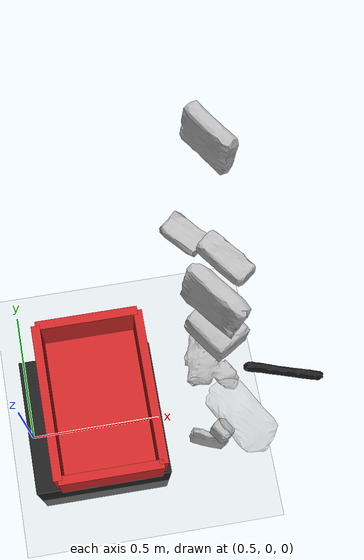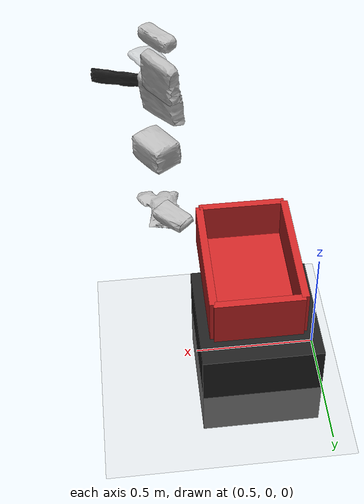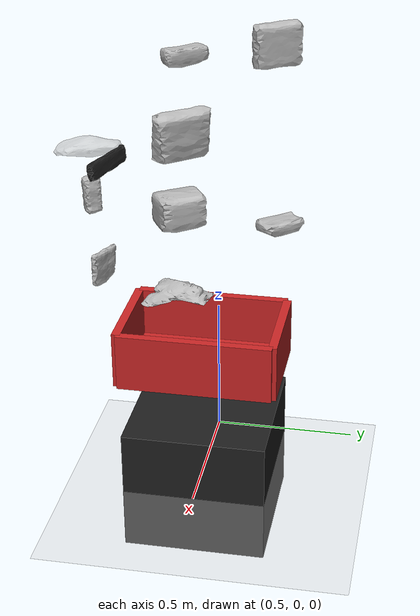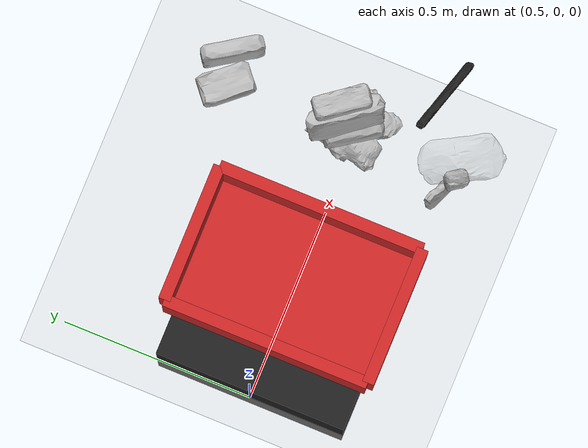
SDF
<sdf version="1.4">
 <world name="default">
  <include><uri>model://ground_plane</uri></include>
  <include><uri>model://sun</uri></include>
  <include><uri>model://apc_order_bin</uri><name>apc_order_bin</name><pose>0.78 0 0.40 0 0 0</pose></include>
  <include>
   <uri>model://apc_order_bin_stage</uri>
   <name>apc_order_bin_stage</name>
   <pose>0.75 0 0 0 0 0</pose>
  </include>
  <include><uri>model://crayola_64_ct</uri><name>crayola_64_ct</name><pose>1.08 0.3 1.6 0 0 0</pose></include>
  <include>
   <uri>model://expo_dry_erase_board_eraser</uri>
   <name>expo_dry_erase_board_eraser</name>
   <pose>1.08 0 1.6 0 0 0</pose>
  </include>
  <include><uri>model://oreo_mega_stuf</uri><name>oreo_mega_stuf</name><pose>1.08 0 1.3 0 0 0</pose></include>
  <include>
   <uri>model://paper_mate_12_count_mirado_black_warrior</uri>
   <name>paper_mate_12_count_mirado_black_warrior</name>
   <pose>1.23 -0.2 1.3 0 0 0</pose>
  </include>
  <include>
   <uri>model://safety_works_safety_glasses</uri>
   <name>safety_works_safety_glasses</name>
   <pose>1.08 -0.28 1.3 0 0 0</pose>
  </include>
  <include>
   <uri>model://mead_index_cards</uri>
   <name>mead_index_cards</name>
   <pose>1.08 0.28 1.1 0 0 0</pose>
  </include>
  <include>
   <uri>model://genuine_joe_plastic_stir_sticks</uri>
   <name>genuine_joe_plastic_stir_sticks</name>
   <pose>1.08 0 1.1 0 0 0</pose>
  </include>
  <include>
   <uri>model://highland_6539_self_stick_notes</uri>
   <name>highland_6539_self_stick_notes</name>
   <pose>1.08 -0.28 1.1 0 0 0</pose>
  </include>
  <include>
   <uri>model://kong_sitting_frog_dog_toy</uri>
   <name>kong_sitting_frog_dog_toy</name>
   <pose>1.08 0 0.85 0 0 0</pose>
  </include>
  <include>
   <uri>model://sharpie_accent_tank_style_highlighters</uri>
   <name>sharpie_accent_tank_style_highlighters</name>
   <pose>1.08 -0.28 0.85 0 0 0</pose>
  </include>
  <physics type="ode">
   <real_time_update_rate>1000.0</real_time_update_rate>
   <gravity>0.0 0.0 -9.81</gravity>
  </physics>
 </world>
</sdf>

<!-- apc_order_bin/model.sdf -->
<!-- |    This file was autogenerated by gzsdf from order_bin.urdf                     | -->
<!-- |    EDITING THIS FILE BY HAND IS NOT RECOMMENDED                                 | -->
<sdf version='1.4'>
  <model name='order_bin'>
    <link name='order_bin_base'>
      <pose>0 0 0 0 -0 0</pose>
      <inertial>
        <pose>0 0 0.08 0 -0 0</pose>
        <mass>0.4</mass>
        <inertia>
          <ixx>0.012376</ixx>
          <ixy>0</ixy>
          <ixz>0</ixz>
          <iyy>0.00604</iyy>
          <iyz>0</iyz>
          <izz>0.016636</izz>
        </inertia>
      </inertial>
      <collision name='order_bin_base_collision'>
        <pose>0 0 0.1 0 -0 0</pose>
        <geometry>
          <box>
            <size>0.03 0.53 0.2</size>
          </box>
        </geometry>
        <surface>
          <contact>
            <ode/>
          </contact>
          <friction>
            <ode/>
          </friction>
        </surface>
      </collision>
      <collision name='order_bin_base_collision_order_bin_x_part0'>
        <pose>-0.175 0 0.1 0 -0 0</pose>
        <geometry>
          <box>
            <size>0.03 0.53 0.2</size>
          </box>
        </geometry>
        <surface>
          <contact>
            <ode/>
          </contact>
          <friction>
            <ode/>
          </friction>
        </surface>
        <surface>
          <contact>
            <ode/>
          </contact>
          <friction>
            <ode/>
          </friction>
        </surface>
      </collision>
      <collision name='order_bin_base_collision_order_bin_x_part1'>
        <pose>0.175 0 0.1 0 -0 0</pose>
        <geometry>
          <box>
            <size>0.03 0.53 0.2</size>
          </box>
        </geometry>
        <surface>
          <contact>
            <ode/>
          </contact>
          <friction>
            <ode/>
          </friction>
        </surface>
        <surface>
          <contact>
            <ode/>
          </contact>
          <friction>
            <ode/>
          </friction>
        </surface>
      </collision>
      <collision name='order_bin_base_collision_order_bin_y_part0'>
        <pose>0 -0.265 0.1 0 -0 0</pose>
        <geometry>
          <box>
            <size>0.35 0.03 0.2</size>
          </box>
        </geometry>
        <surface>
          <contact>
            <ode/>
          </contact>
          <friction>
            <ode/>
          </friction>
        </surface>
        <surface>
          <contact>
            <ode/>
          </contact>
          <friction>
            <ode/>
          </friction>
        </surface>
      </collision>
      <collision name='order_bin_base_collision_order_bin_y_part1'>
        <pose>0 0.265 0.1 0 -0 0</pose>
        <geometry>
          <box>
            <size>0.35 0.03 0.2</size>
          </box>
        </geometry>
        <surface>
          <contact>
            <ode/>
          </contact>
          <friction>
            <ode/>
          </friction>
        </surface>
        <surface>
          <contact>
            <ode/>
          </contact>
          <friction>
            <ode/>
          </friction>
        </surface>
      </collision>
      <visual name='order_bin_base_visual'>
        <pose>0 0 0.015 0 -0 0</pose>
        <geometry>
          <box>
            <size>0.35 0.53 0.03</size>
          </box>
        </geometry>
        <material>
          <script>
            <name>Gazebo/Red</name>
            <uri>__default__</uri>
          </script>
        </material>
      </visual>
      <visual name='order_bin_base_visual_order_bin_x_part0'>
        <pose>-0.175 0 0.1 0 -0 0</pose>
        <geometry>
          <box>
            <size>0.03 0.53 0.2</size>
          </box>
        </geometry>
        <material>
          <script>
            <name>Gazebo/Red</name>
            <uri>__default__</uri>
          </script>
        </material>
      </visual>
      <visual name='order_bin_base_visual_order_bin_x_part1'>
        <pose>0.175 0 0.1 0 -0 0</pose>
        <geometry>
          <box>
            <size>0.03 0.53 0.2</size>
          </box>
        </geometry>
        <material>
          <script>
            <name>Gazebo/Red</name>
            <uri>__default__</uri>
          </script>
        </material>
      </visual>
      <visual name='order_bin_base_visual_order_bin_y_part0'>
        <pose>0 -0.265 0.1 0 -0 0</pose>
        <geometry>
          <box>
            <size>0.35 0.03 0.2</size>
          </box>
        </geometry>
        <material>
          <script>
            <name>Gazebo/Red</name>
            <uri>__default__</uri>
          </script>
        </material>
      </visual>
      <visual name='order_bin_base_visual_order_bin_y_part1'>
        <pose>0 0.265 0.1 0 -0 0</pose>
        <geometry>
          <box>
            <size>0.35 0.03 0.2</size>
          </box>
        </geometry>
        <material>
          <script>
            <name>Gazebo/Red</name>
            <uri>__default__</uri>
          </script>
        </material>
      </visual>
      <velocity_decay>
        <linear>0</linear>
        <angular>0</angular>
      </velocity_decay>
      <velocity_decay>
        <linear>0</linear>
        <angular>0</angular>
      </velocity_decay>
      <velocity_decay>
        <linear>0</linear>
        <angular>0</angular>
      </velocity_decay>
      <velocity_decay>
        <linear>0</linear>
        <angular>0</angular>
      </velocity_decay>
      <gravity>1</gravity>
      <velocity_decay>
        <linear>0</linear>
        <angular>0</angular>
      </velocity_decay>
      <self_collide>0</self_collide>
    </link>
  </model>
</sdf>

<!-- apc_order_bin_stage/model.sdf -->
<sdf version="1.4">
<model name="apc_order_bin_stage">
  <pose>0 0 0.225 0 0 0</pose>
  <link name="link">
    <inertial>
      <mass>15.0</mass>
      <inertia> <!-- interias are tricky to compute -->
        <!-- http://answers.gazebosim.org/question/4372/the-inertia-matrix-explained/ -->
        <ixx>7</ixx>       <!-- for a box: ixx = 0.083 * mass * (y*y + z*z) -->
        <ixy>0.0</ixy>         <!-- for a box: ixy = 0 -->
        <ixz>0.0</ixz>         <!-- for a box: ixz = 0 -->
        <iyy>7</iyy>       <!-- for a box: iyy = 0.083 * mass * (x*x + z*z) -->
        <iyz>0.0</iyz>         <!-- for a box: iyz = 0 -->
        <izz>7</izz>       <!-- for a box: izz = 0.083 * mass * (x*x + y*y) -->
      </inertia>
    </inertial>
    <collision name="collision">
      <geometry>
        <box>
          <size>0.5 0.5 0.45</size>
        </box>
      </geometry>
    </collision>
    <visual name="visual">
      <geometry>
        <box>
          <size>0.5 0.5 0.45</size>
        </box>
      </geometry>
      <material>
        <script>
          <name>Gazebo/Black</name>
          <uri>__default__</uri>
        </script>
      </material>
    </visual>
  </link>
</model>
</sdf>

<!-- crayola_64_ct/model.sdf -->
<sdf version="1.4">
  <model name="crayola_64_ct">
    <link name="crayola_64_ct_link">
      <inertial>
        <pose>0 0 0 0 0 0</pose>
        <mass>0.08</mass>
      </inertial>

      <visual name="crayola_64_ct_visual">
        <pose>0 0 0 0 0 0</pose>
        <material>
          <script>
            <uri>model://crayola_64_ct/materials/scripts</uri>
            <uri>model://crayola_64_ct/materials/textures</uri>
            <name>crayola_64_ct</name>
          </script>
        </material>
        <geometry>
          <mesh>
            <uri>model://crayola_64_ct/meshes/crayola_64_ct.dae</uri>
          </mesh>
        </geometry>
      </visual>

      <collision name="crayola_64_ct_collision">
        <pose>0 0 0 0 0 0</pose>
        <geometry>
          <mesh>
            <uri>model://crayola_64_ct/meshes/crayola_64_ct.dae</uri>
          </mesh>
        </geometry>
        <surface>
          <friction>
            <ode>
              <mu>0.8</mu>
              <mu2>0.8</mu2>
            </ode>
          </friction>
        </surface>
      </collision>

    </link>
  </model>
</sdf>

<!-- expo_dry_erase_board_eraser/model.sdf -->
<sdf version="1.4">
  <model name="expo_dry_erase_board_eraser">
    <link name="expo_dry_erase_board_eraser_link">
      <inertial>
        <pose>0 0 0 0 0 0</pose>
        <mass>0.08</mass>
      </inertial>

      <visual name="expo_dry_erase_board_eraser_visual">
        <pose>0 0 0 0 0 0</pose>
        <material>
          <script>
            <uri>model://expo_dry_erase_board_eraser/materials/scripts</uri>
            <uri>model://expo_dry_erase_board_eraser/materials/textures</uri>
            <name>expo_dry_erase_board_eraser</name>
          </script>
        </material>
        <geometry>
          <mesh>
            <uri>model://expo_dry_erase_board_eraser/meshes/expo_dry_erase_board_eraser.dae</uri>
          </mesh>
        </geometry>
      </visual>

      <collision name="expo_dry_erase_board_eraser_collision">
        <pose>0 0 0 0 0 0</pose>
        <geometry>
          <mesh>
            <uri>model://expo_dry_erase_board_eraser/meshes/expo_dry_erase_board_eraser.dae</uri>
          </mesh>
        </geometry>
        <surface>
          <friction>
            <ode>
              <mu>0.8</mu>
              <mu2>0.8</mu2>
            </ode>
          </friction>
        </surface>
      </collision>

    </link>
  </model>
</sdf>

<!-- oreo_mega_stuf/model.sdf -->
<sdf version="1.4">
  <model name="oreo_mega_stuf">
    <link name="oreo_mega_stuf_link">
      <inertial>
        <pose>0 0 0 0 0 0</pose>
        <mass>0.08</mass>
      </inertial>

      <visual name="oreo_mega_stuf_visual">
        <pose>0 0 0 0 0 0</pose>
        <material>
          <script>
            <uri>model://oreo_mega_stuf/materials/scripts</uri>
            <uri>model://oreo_mega_stuf/materials/textures</uri>
            <name>oreo_mega_stuf</name>
          </script>
        </material>
        <geometry>
          <mesh>
            <uri>model://oreo_mega_stuf/meshes/oreo_mega_stuf.dae</uri>
          </mesh>
        </geometry>
      </visual>

      <collision name="oreo_mega_stuf_collision">
        <pose>0 0 0 0 0 0</pose>
        <geometry>
          <mesh>
            <uri>model://oreo_mega_stuf/meshes/oreo_mega_stuf.dae</uri>
          </mesh>
        </geometry>
        <surface>
          <friction>
            <ode>
              <mu>0.8</mu>
              <mu2>0.8</mu2>
              <fdir1>0.0 0.0 0.0</fdir1>
              <slip1>0.01</slip1>
              <slip2>0.01</slip2>
            </ode>
          </friction>
        </surface>
      </collision>

    </link>
  </model>
</sdf>

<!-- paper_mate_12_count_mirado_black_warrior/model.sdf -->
<sdf version="1.4">
  <model name="paper_mate_12_count_mirado_black_warrior">
    <link name="paper_mate_12_count_mirado_black_warrior_link">
      <inertial>
        <pose>0 0 0 0 0 0</pose>
        <mass>0.08</mass>
      </inertial>

      <visual name="paper_mate_12_count_mirado_black_warrior_visual">
        <pose>0 0 0 0 0 0</pose>
        <material>
          <script>
            <uri>model://paper_mate_12_count_mirado_black_warrior/materials/scripts</uri>
            <uri>model://paper_mate_12_count_mirado_black_warrior/materials/textures</uri>
            <name>paper_mate_12_count_mirado_black_warrior</name>
          </script>
        </material>
        <geometry>
          <mesh>
            <uri>model://paper_mate_12_count_mirado_black_warrior/meshes/paper_mate_12_count_mirado_black_warrior.dae</uri>
          </mesh>
        </geometry>
      </visual>

      <collision name="paper_mate_12_count_mirado_black_warrior_collision">
        <pose>0 0 0 0 0 0</pose>
        <geometry>
          <mesh>
            <uri>model://paper_mate_12_count_mirado_black_warrior/meshes/paper_mate_12_count_mirado_black_warrior.dae</uri>
          </mesh>
        </geometry>
        <surface>
          <friction>
            <ode>
              <mu>0.8</mu>
              <mu2>0.8</mu2>
            </ode>
          </friction>
        </surface>
      </collision>

    </link>
  </model>
</sdf>

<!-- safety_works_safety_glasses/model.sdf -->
<sdf version="1.4">
  <model name="safety_works_safety_glasses">
    <link name="safety_works_safety_glasses_link">
      <inertial>
        <pose>0 0 0 0 0 0</pose>
        <mass>0.08</mass>
      </inertial>

      <visual name="safety_works_safety_glasses_visual">
        <pose>0 0 0 0 0 0</pose>
        <material>
          <script>
            <uri>model://safety_works_safety_glasses/materials/scripts</uri>
            <uri>model://safety_works_safety_glasses/materials/textures</uri>
            <name>safety_works_safety_glasses</name>
          </script>
        </material>
        <geometry>
          <mesh>
            <uri>model://safety_works_safety_glasses/meshes/safety_works_safety_glasses.dae</uri>
          </mesh>
        </geometry>
      </visual>

      <collision name="safety_works_safety_glasses_collision">
        <pose>0 0 0 0 0 0</pose>
        <geometry>
          <mesh>
            <uri>model://safety_works_safety_glasses/meshes/safety_works_safety_glasses.dae</uri>
          </mesh>
        </geometry>
        <surface>
          <friction>
            <ode>
              <mu>0.8</mu>
              <mu2>0.8</mu2>
              <fdir1>0.0 0.0 0.0</fdir1>
              <slip1>0.01</slip1>
              <slip2>0.01</slip2>
            </ode>
          </friction>
        </surface>
      </collision>

    </link>
  </model>
</sdf>

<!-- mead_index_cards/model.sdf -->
<sdf version="1.4">
  <model name="mead_index_cards">
    <link name="mead_index_cards_link">
      <inertial>
        <pose>0 0 0 0 0 0</pose>
        <mass>0.08</mass>
      </inertial>

      <visual name="mead_index_cards_visual">
        <pose>0 0 0 0 0 0</pose>
        <material>
          <script>
            <uri>model://mead_index_cards/materials/scripts</uri>
            <uri>model://mead_index_cards/materials/textures</uri>
            <name>mead_index_cards</name>
          </script>
        </material>
        <geometry>
          <mesh>
            <uri>model://mead_index_cards/meshes/mead_index_cards.dae</uri>
          </mesh>
        </geometry>
      </visual>

      <collision name="mead_index_cards_collision">
        <pose>0 0 0 0 0 0</pose>
        <geometry>
          <mesh>
            <uri>model://mead_index_cards/meshes/mead_index_cards.dae</uri>
          </mesh>
        </geometry>
        <surface>
          <friction>
            <ode>
              <mu>0.8</mu>
              <mu2>0.8</mu2>
            </ode>
          </friction>
        </surface>
      </collision>

    </link>
  </model>
</sdf>

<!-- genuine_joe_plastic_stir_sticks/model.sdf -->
<sdf version="1.4">
  <model name="genuine_joe_plastic_stir_sticks">
    <link name="genuine_joe_plastic_stir_sticks_link">
      <inertial>
        <pose>0 0 0 0 0 0</pose>
        <mass>0.08</mass>
      </inertial>

      <visual name="genuine_joe_plastic_stir_sticks_visual">
        <pose>0 0 0 0 0 0</pose>
        <material>
          <script>
            <uri>model://genuine_joe_plastic_stir_sticks/materials/scripts</uri>
            <uri>model://genuine_joe_plastic_stir_sticks/materials/textures</uri>
            <name>genuine_joe_plastic_stir_sticks</name>
          </script>
        </material>
        <geometry>
          <mesh>
            <uri>model://genuine_joe_plastic_stir_sticks/meshes/genuine_joe_plastic_stir_sticks.dae</uri>
          </mesh>
        </geometry>
      </visual>

      <collision name="genuine_joe_plastic_stir_sticks_collision">
        <pose>0 0 0 0 0 0</pose>
        <geometry>
          <mesh>
            <uri>model://genuine_joe_plastic_stir_sticks/meshes/genuine_joe_plastic_stir_sticks.dae</uri>
          </mesh>
        </geometry>
        <surface>
          <friction>
            <ode>
              <mu>0.8</mu>
              <mu2>0.8</mu2>
            </ode>
          </friction>
        </surface>
      </collision>

    </link>
  </model>
</sdf>

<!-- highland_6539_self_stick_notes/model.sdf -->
<sdf version="1.4">
  <model name="highland_6539_self_stick_notes">
    <link name="highland_6539_self_stick_notes_link">
      <inertial>
        <pose>0 0 0 0 0 0</pose>
        <mass>0.08</mass>
      </inertial>

      <visual name="highland_6539_self_stick_notes_visual">
        <pose>0 0 0 0 0 0</pose>
        <material>
          <script>
            <uri>model://highland_6539_self_stick_notes/materials/scripts</uri>
            <uri>model://highland_6539_self_stick_notes/materials/textures</uri>
            <name>highland_6539_self_stick_notes</name>
          </script>
        </material>
        <geometry>
          <mesh>
            <uri>model://highland_6539_self_stick_notes/meshes/highland_6539_self_stick_notes.dae</uri>
          </mesh>
        </geometry>
      </visual>

      <collision name="highland_6539_self_stick_notes_collision">
        <pose>0 0 0 0 0 0</pose>
        <geometry>
          <mesh>
            <uri>model://highland_6539_self_stick_notes/meshes/highland_6539_self_stick_notes.dae</uri>
          </mesh>
        </geometry>
        <surface>
          <friction>
            <ode>
              <mu>0.8</mu>
              <mu2>0.8</mu2>
            </ode>
          </friction>
        </surface>
      </collision>

    </link>
  </model>
</sdf>

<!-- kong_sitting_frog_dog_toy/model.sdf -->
<sdf version="1.4">
  <model name="kong_sitting_frog_dog_toy">
    <link name="kong_sitting_frog_dog_toy_link">
      <inertial>
        <pose>0 0 0 0 0 0</pose>
        <mass>0.08</mass>
      </inertial>

      <visual name="kong_sitting_frog_dog_toy_visual">
        <pose>0 0 0 0 0 0</pose>
        <material>
          <script>
            <uri>model://kong_sitting_frog_dog_toy/materials/scripts</uri>
            <uri>model://kong_sitting_frog_dog_toy/materials/textures</uri>
            <name>kong_sitting_frog_dog_toy</name>
          </script>
        </material>
        <geometry>
          <mesh>
            <uri>model://kong_sitting_frog_dog_toy/meshes/kong_sitting_frog_dog_toy.dae</uri>
          </mesh>
        </geometry>
      </visual>

      <collision name="kong_sitting_frog_dog_toy_collision">
        <pose>0 0 0 0 0 0</pose>
        <geometry>
          <mesh>
            <uri>model://kong_sitting_frog_dog_toy/meshes/kong_sitting_frog_dog_toy.dae</uri>
          </mesh>
        </geometry>
        <surface>
          <friction>
            <ode>
              <mu>0.8</mu>
              <mu2>0.8</mu2>
            </ode>
          </friction>
        </surface>
      </collision>

    </link>
  </model>
</sdf>

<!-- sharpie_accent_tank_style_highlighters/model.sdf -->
<sdf version="1.4">
  <model name="sharpie_accent_tank_style_highlighters">
    <link name="sharpie_accent_tank_style_highlighters_link">
      <inertial>
        <pose>0 0 0 0 0 0</pose>
        <mass>0.08</mass>
      </inertial>

      <visual name="sharpie_accent_tank_style_highlighters_visual">
        <pose>0 0 0 0 0 0</pose>
        <material>
          <script>
            <uri>model://sharpie_accent_tank_style_highlighters/materials/scripts</uri>
            <uri>model://sharpie_accent_tank_style_highlighters/materials/textures</uri>
            <name>sharpie_accent_tank_style_highlighters</name>
          </script>
        </material>
        <geometry>
          <mesh>
            <uri>model://sharpie_accent_tank_style_highlighters/meshes/sharpie_accent_tank_style_highlighters.dae</uri>
          </mesh>
        </geometry>
      </visual>

      <collision name="sharpie_accent_tank_style_highlighters_collision">
        <pose>0 0 0 0 0 0</pose>
        <geometry>
          <mesh>
            <uri>model://sharpie_accent_tank_style_highlighters/meshes/sharpie_accent_tank_style_highlighters.dae</uri>
          </mesh>
        </geometry>
        <surface>
          <friction>
            <ode>
              <mu>0.8</mu>
              <mu2>0.8</mu2>
            </ode>
          </friction>
        </surface>
      </collision>

    </link>
  </model>
</sdf>
